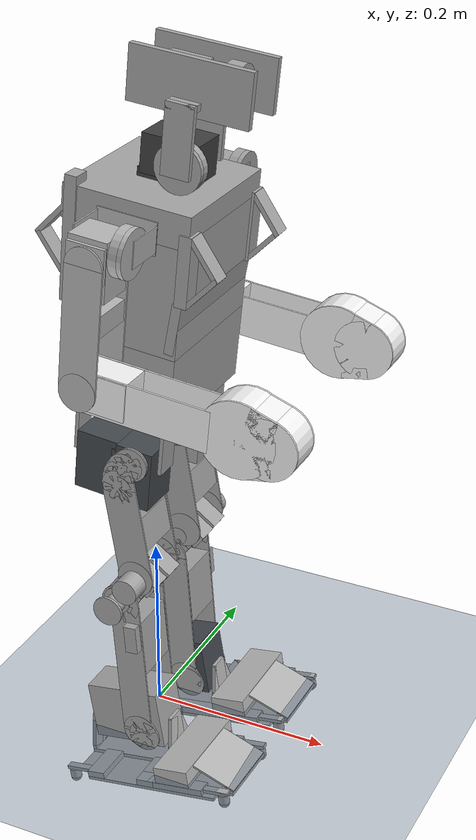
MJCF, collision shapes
<mujoco model="wolfgang scene">
  <include file="wolfgang_robot.xml"/>

  <statistic center="0 0 0.2" extent="0.6"/>

  <visual>
    <headlight diffuse="0.6 0.6 0.6" ambient="0.3 0.3 0.3" specular="0 0 0"/>
    <rgba haze="0.15 0.25 0.35 1"/>
    <global azimuth="160" elevation="-20"/>
  </visual>

  <asset>
    <texture type="skybox" builtin="gradient" rgb1="0.3 0.5 0.7" rgb2="0 0 0" width="512" height="3072"/>
    <texture type="2d" name="groundplane" builtin="checker" mark="edge" rgb1="0.2 0.3 0.4" rgb2="0.1 0.2 0.3"
      markrgb="0.8 0.8 0.8" width="300" height="300"/>
    <material name="groundplane" texture="groundplane" texuniform="true" texrepeat="5 5" reflectance="0.2"/>
  </asset>

  <worldbody>
    <light pos="0 0 1.5" dir="0 0 -1" directional="true"/>
    <geom name="floor" size="0 0 0.05" type="plane" material="groundplane" condim="4" friction="3.0 0.5 0.05" solimp="0.99 0.999 0.001 0.5 10" solref="0.005 2"/>
  </worldbody>
</mujoco>
